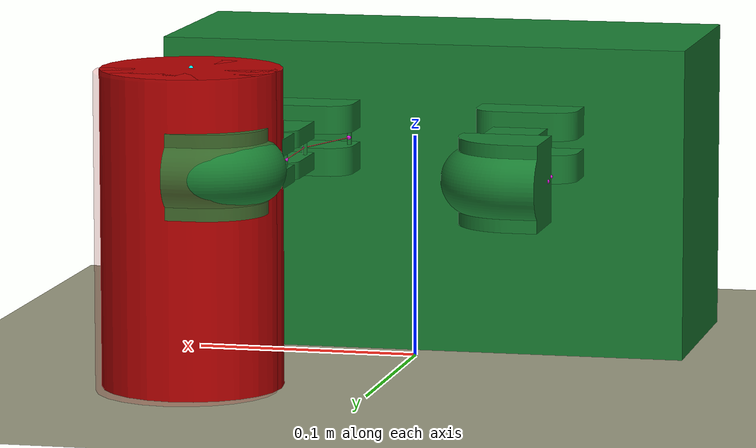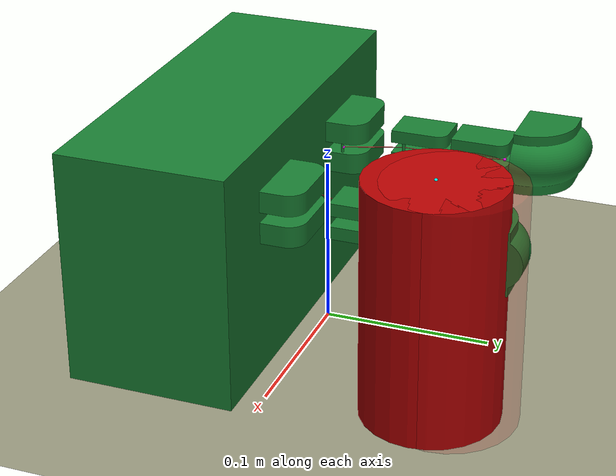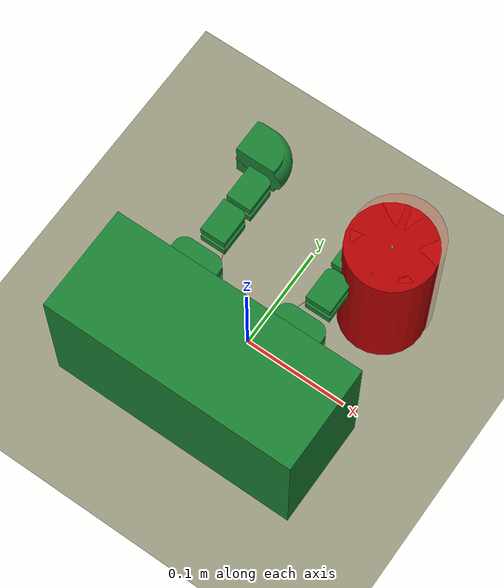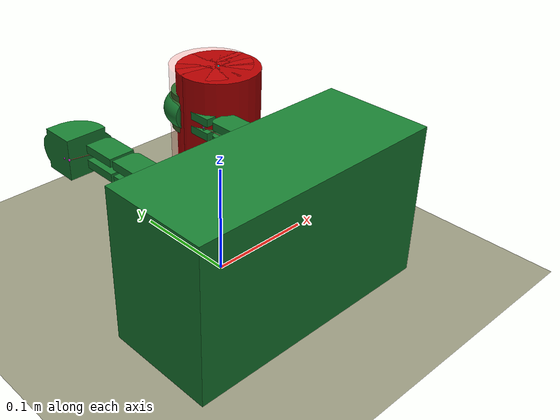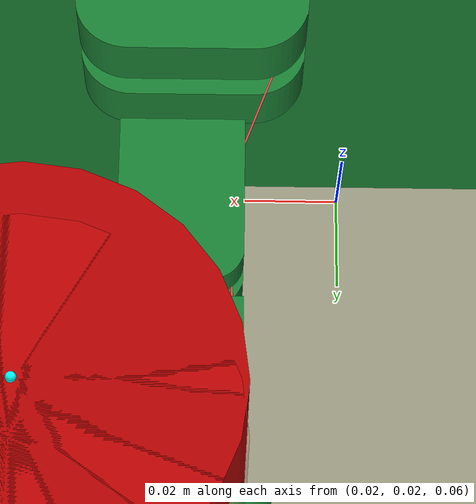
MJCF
<mujoco>
  <compiler angle="radian"
          inertiafromgeom="true"
          texturedir="textures/"/>
  <default>
      <site type="sphere" rgba=".9 .1 .9 1" size="0.001"/>
      <geom rgba=".1 .5 .2 1"/>
  </default>

<option timestep="0.01" />

  <asset>
    <material name="MatGnd" specular=".3" shininess=".3" reflectance="0.3" rgba=".5 .55 .5 1"/>
    <mesh name="body1" file="meshes/sensor_top.STL" scale=".001 .001 .001"/>
    <mesh name="body0" file="meshes/long_sensor_top.STL" scale=".001 .001 .001"/>
    <mesh name="tip" file="meshes/tip.STL" scale=".001 .001 .001"/>
    <mesh name="tip2" file="meshes/tip_2.STL" scale=".001 .001 .001"/>
  </asset>
   <worldbody>

     <light directional="true" cutoff="40" exponent="10" diffuse=".4 .4 .4" specular=".7 .7 .7" pos="0 0 1.5" dir="0 0 -1"/>
     <geom name="tableTop" material="MatGnd" type="plane"  size="0.4 0.3 0.2" rgba=".6 .6 .5 1" contype="1" conaffinity="1"/>

     <body name="item" pos="0.08 0.09 0.07" >
       <geom type="cylinder" size="0.04 0.07"  rgba="0.7 0 0 1" mass="0.1"/>
       <site name="object" rgba="0 1 1 1 "/>
       <site name="object_top" pos="0 0 0.07" rgba="0 1 1 1 "/>
       <joint type="free" />

     </body>

      <body name="base" pos="0 0 0">

          <geom type="box" size="0.12 0.05 0.07" pos="0 -0.062 0.07" />
          <body name="right" pos="0.051438 0 0.09795">

            <geom type="mesh" mesh="body0" euler="1.57 0 0" pos="-0.02313777 0.01214 0.0032" mass="0.01485"/>
            <geom type="mesh" mesh="body0" euler="1.57 0 0" pos="-0.02313777 0.01214 -0.01585" mass="0.01485"/>
            <geom name ="spool_0" type="cylinder" size="0.001 0.01" euler="0 0 0" pos="-0.02038789 -0.00223829 0"/>
            <site name="site0" pos="-0.02038789 -0.00173829 0"/>
            <body name="right_1" pos="0 0.042141198166 0" >
              <geom type="mesh" mesh="body1" euler="0 0 0" pos="-0.0108 -0.017184 0.0032" mass="0.0125"/>
              <geom type="mesh" mesh="body1" euler="0 0 0" pos="-0.0108 -0.017184 -0.01085" mass="0.0125"/>
              <geom name ="spool_1" type="cylinder" size="0.001 0.01" euler="0 0 0" pos="-0.00828 -0.00988 0"/>
              <joint name="joint0" type="hinge" pos="0 -0.042141198166 0" limited="true" range="-0.785398 0.785398" stiffness="0.0128" springref="-1.81461882" damping="0.03"/>
              <site name="site1" pos="-0.00817 -0.00988 0"/>
              <body name="right_2" pos="0 0.0371412 0" >
                  <geom type="mesh" mesh="body1" euler="0 0 0" pos="-0.0108 -0.017184 0.0032" mass="0.0125"/>
                  <geom type="mesh" mesh="body1" euler="0 0 0" pos="-0.0108 -0.017184 -0.01085" mass="0.0125"/>
                  <geom name ="spool_2" type="cylinder" size="0.001 0.01" euler="0 0 0" pos="-0.00828 -0.00988 0"/>
                  <site name="site2" pos="-0.00867 -0.00988 0"/>
                  <site name="torque_site" pos="0 -0.0371412 0"/>
                  <joint name="joint1" type="hinge" pos="0 -0.0371412 0" limited="true" range="0 1.57" stiffness="0.0128" springref="-1.029" damping="0.03"/>
                  <body name="right_finger" pos="0.0089308 0.034505 -0.00275" >
                    <body name ="r_sensor" euler="0 -1.57 0" pos="0 0 0">
                      <geom type="mesh" mesh="tip2" euler="0 1.57 0"  pos="-0.015992 -0.014547 0.025959" mass="0.0157"/>
                      <site name="site3" pos="0.00175 -0.0195474 0.0154308"/>
                      <site name="site4" pos="0.00175 -0.0195474 0.0034308"/>
                      <site name="site5" pos="0.00175 -0.0145474 -0.0204308"/>
                      <site name="site6" pos="0.00275 -0.0075474 -0.0204308"/>
                      <joint name="joint2" type="hinge" axis="1 0 0" pos="0.00275 -0.034505  0.0089308" limited="true" range="0 1.57" stiffness="0.0128" springref="-1.029" damping="0.03"/>

                      <site name="r_sensor_1_b" pos="0.00275 -0.0088759 0.0109516" euler="0 0 0"/>
                      <site name="r_sensor_2_b" pos="0.00275 -0.0010084 0.0092074" euler="-0.436332 0 0"/>
                      <site name="r_sensor_3_b" pos="0.00275  0.0053848 0.0043017" euler="-0.872665 0 0"/>
                      <site name="r_sensor_4_b" pos=" 0.00275  0.0091058 -0.0028462" euler="-1.309 0 0"/>

                    </body>

                  </body>
              </body>
            </body>
          </body>

          <body name="left" pos="-0.051438 0 0.09795" euler="0 3.14 0" >
            <geom type="mesh" mesh="body0" euler="1.57 0 0" pos="-0.02313777 0.01214 0.0032" mass="0.01485"/>
            <geom type="mesh" mesh="body0" euler="1.57 0 0" pos="-0.02313777 0.01214 -0.01585" mass="0.01485"/>
            <geom name ="l_spool_0" type="cylinder" size="0.001 0.01" euler="0 0 0" pos="-0.02038789 -0.00223829 0"/>
            <site name="l_site0" pos="-0.02038789 -0.00173829 0"/>
            <body name="left_1" pos="0 0.042141198166 0">
              <geom type="mesh" mesh="body1" euler="0 0 0" pos="-0.0108 -0.017184 0.0032" mass="0.0125" />
              <geom type="mesh" mesh="body1" euler="0 0 0" pos="-0.0108 -0.017184 -0.01085" mass="0.0125"/>
              <geom name ="l_spool_1" type="cylinder" size="0.001 0.01" euler="0 0 0" pos="-0.00828 -0.00988 0"/>
              <joint axis="0 0 -1" name="l_joint0" type="hinge" pos="0 -0.042141198166 0" limited="true" ref="0" range="-0.785398 0.785398" stiffness="0.0128" springref="1.81461882" damping="0.03"/>
              <site name="l_site1" pos="-0.00817 -0.00988 0"/>
              <body name="left_2" pos="0 0.0371412 0">
                  <geom type="mesh" mesh="body1" euler="0 0 0" pos="-0.0108 -0.017184 0.0032" mass="0.0125"/>
                  <geom type="mesh" mesh="body1" euler="0 0 0" pos="-0.0108 -0.017184 -0.01085" mass="0.0125"/>
                  <geom name ="l_spool_2" type="cylinder" size="0.001 0.01" euler="0 0 0" pos="-0.00828 -0.00988 0"/>
                  <site name="l_site2" pos="-0.00867 -0.00988 0"/>
                  <joint axis="0 0 -1" name="l_joint1" type="hinge" pos="0 -0.0371412 0" limited="true" range="-1.57 0" stiffness="0.0128" springref="1.029" damping="0.03"/>
                  <body name="left_finger" pos="0.0089308 0.034505 -0.00275">
                      <body name ="l_sensor" euler="0 -1.57 0" pos="0 0 0">
                      <geom type="mesh" mesh="tip2" euler="0 1.57 0"  pos="-0.015992 -0.014547 0.025959" mass="0.0157"/>
                      <site name="l_site3" pos="0.00175 -0.0195474 0.0154308"/>
                      <site name="l_site4" pos="0.00175 -0.0195474 0.0034308"/>
                      <site name="l_site5" pos="0.00175 -0.0145474 -0.0204308"/>
                      <site name="l_site6" pos="0.00275 -0.0075474 -0.0204308"/>
                      <joint axis="-1 0 0" name="l_joint2" type="hinge"  pos="0.00275 -0.034505  0.0089308" limited="true" range="-1.57 0" stiffness="0.0128" springref="1.029" damping="0.03"/>

                      <site name="l_sensor_1_b" pos="0.00275 -0.0088759 0.0109516" euler="0 0 0"/>
                      <site name="l_sensor_2_b" pos="0.00275 -0.0010084 0.0092074" euler="-0.436332 0 0"/>
                      <site name="l_sensor_3_b" pos="0.00275  0.0053848 0.0043017" euler="-0.872665 0 0"/>
                      <site name="l_sensor_4_b" pos=" 0.00275  0.0091058 -0.0028462" euler="-1.309 0 0"/>

                    </body>

                  </body>
              </body>
            </body>

          </body>
      </body>

      <body name="goal" pos="0.08 0.1 0.07" >
        <site name="target" type="cylinder" size="0.04 0.07" rgba=" .9 .1 .1 .1" />

      </body>

   </worldbody>

   <tendon>
           <spatial name="tendon1" width="0.0002" rgba=".95 .3 .3 1" >
                  <site site="site0"/>
                  <site site="site1"/>
                  <site site="site2"/>
                  <site site="site3"/>
                  <site site="site4"/>
                  <site site="site5"/>
                  <site site="site6"/>

             </spatial>

             <spatial name="tendon2" width="0.0002" rgba=".95 .3 .3 1" >
                    <site site="l_site0"/>
                    <site site="l_site1"/>
                    <site site="l_site2"/>
                    <site site="l_site3"/>
                    <site site="l_site4"/>
                    <site site="l_site5"/>
                    <site site="l_site6"/>

               </spatial>
 </tendon>

 <actuator>
    <motor name="Right" tendon="tendon1" ctrllimited="true" ctrlrange="-1 0" gear="20"  />
    <motor name="Left" tendon="tendon2" ctrllimited="true" ctrlrange="-1 0" gear="20" />
 </actuator>

</mujoco>
